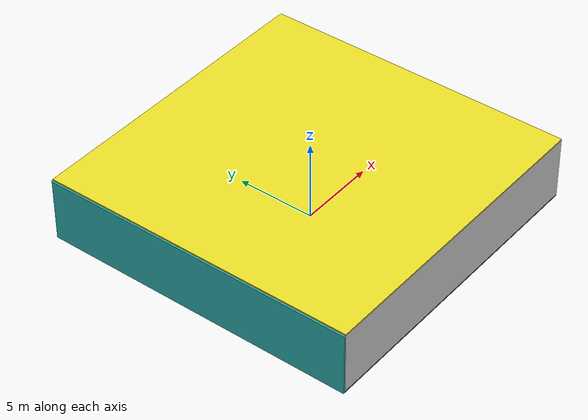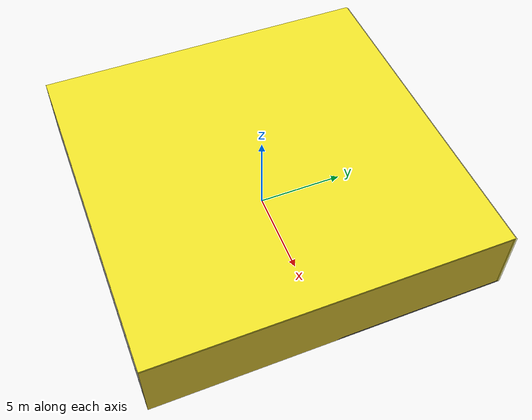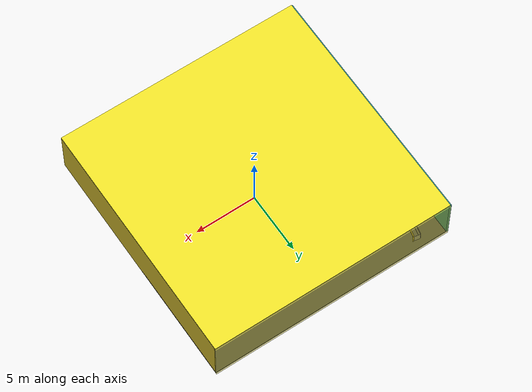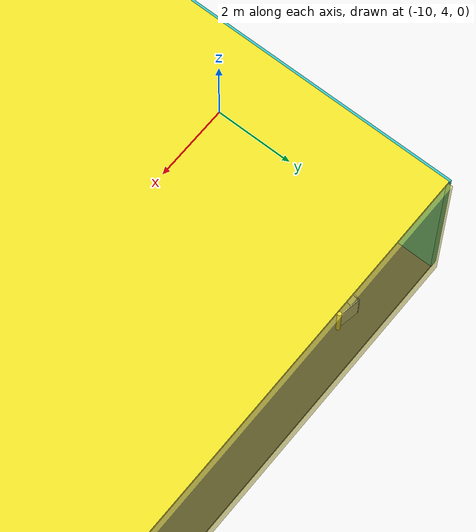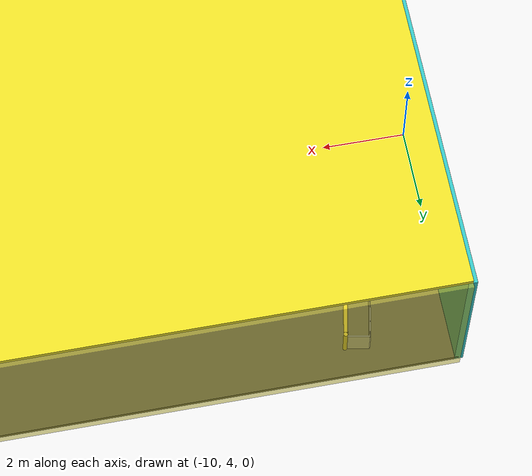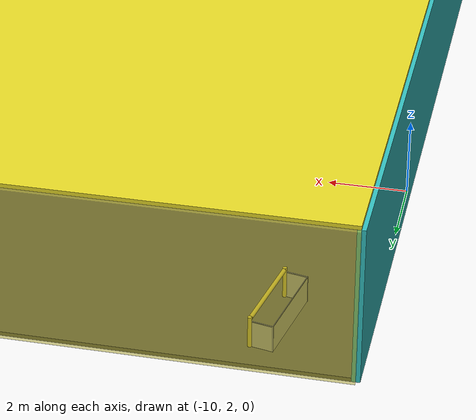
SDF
<sdf version="1.4">
 <world name="default">
  <physics type="ode">
   <max_step_size>0.001</max_step_size>
   <real_time_factor>1</real_time_factor>
   <real_time_update_rate>1000</real_time_update_rate>
   <gravity>0 0 -9.8</gravity>
  </physics>
  <scene><ambient>0.4 0.4 0.4 1</ambient><background>0.7 0.7 0.7 1</background><shadows>1</shadows></scene>
  <model name="Surrounding">
   <static>1</static>
   <link name="Ceiling">
    <collision name="Ceiling_Collision"><geometry><box><size>20 20 0.1</size></box></geometry></collision>
    <visual name="Ceiling_Visual">
     <geometry><box><size>20 20 0.1</size></box></geometry>
     <material>
      <script><uri>file://media/materials/scripts/gazebo.material</uri><name>Gazebo/Yellow</name></script>
     </material>
    </visual>
    <pose>0 0 4.05 0 0 0</pose>
   </link>
   <link name="Wall_South">
    <collision name="Wall_South_Collision">
     <geometry><box><size>20 0 4</size></box></geometry>
     <pose>0 0 2 0 -0 0</pose>
    </collision>
    <visual name="Wall_South_Visual">
     <pose>0 0 2 0 -0 0</pose>
     <geometry><box><size>20 0 4</size></box></geometry>
     <material>
      <script><uri>file://media/materials/scripts/gazebo.material</uri><name>Gazebo/White</name></script>
     </material>
    </visual>
    <velocity_decay><linear>0</linear><angular>0</angular></velocity_decay>
    <pose>0 -10 0 0 -0 0</pose>
   </link>
   <link name="Wall_East">
    <collision name="Wall_21_Collision">
     <geometry><box><size>20 0 4</size></box></geometry>
     <pose>0 0 2 0 -0 0</pose>
    </collision>
    <visual name="Wall_21_Visual">
     <pose>0 0 2 0 -0 0</pose>
     <geometry><box><size>20 0 4</size></box></geometry>
     <material>
      <script><uri>file://media/materials/scripts/gazebo.material</uri><name>Gazebo/ZincYellow</name></script>
     </material>
    </visual>
    <velocity_decay><linear>0</linear><angular>0</angular></velocity_decay>
    <pose>10 0 0 0 -0 1.5708</pose>
   </link>
   <link name="Wall_North">
    <collision name="Wall_22_Collision">
     <geometry><box><size>20 0.2 4</size></box></geometry>
     <pose>0 0 2 0 -0 0</pose>
    </collision>
    <visual name="Wall_22_Visual">
     <pose>0 0 2 0 -0 0</pose>
     <geometry><box><size>20 0.2 4</size></box></geometry>
     <material>
      <script>
       <uri>file://media/materials/scripts/gazebo.material</uri>
       <name>Gazebo/YellowTransparent</name>
      </script>
     </material>
    </visual>
    <velocity_decay><linear>0</linear><angular>0</angular></velocity_decay>
    <pose>0 10 0 0 -0 0</pose>
   </link>
   <link name="Wall_West">
    <collision name="Wall_23_Collision">
     <geometry><box><size>20 0.2 4</size></box></geometry>
     <pose>0 0 2 0 -0 0</pose>
    </collision>
    <visual name="Wall_23_Visual">
     <pose>0 0 2 0 -0 0</pose>
     <geometry><box><size>20 0.2 4</size></box></geometry>
     <material>
      <script><uri>file://media/materials/scripts/gazebo.material</uri><name>Gazebo/Turquoise</name></script>
     </material>
    </visual>
    <velocity_decay><linear>0</linear><angular>0</angular></velocity_decay>
    <pose>-10 0 0 0 0 -1.5708</pose>
   </link>
   <link name="Ground_link">
    <collision name="collision">
     <pose>0 0 .05 0 -0 0</pose>
     <geometry><box><size>20 20 0.1</size></box></geometry>
    </collision>
    <visual name="visual">
     <pose>0 0 .05 0 -0 0</pose>
     <geometry><box><size>20 20 0.1</size></box></geometry>
     <material>
      <script><uri>file://media/materials/scripts/gazebo.material</uri><name>Gazebo/Road</name></script>
     </material>
    </visual>
   </link>
   <static>1</static>
  </model>
  <spherical_coordinates>
   <surface_model>EARTH_WGS84</surface_model>
   <latitude_deg>0</latitude_deg>
   <longitude_deg>0</longitude_deg>
   <elevation>0</elevation>
   <heading_deg>0</heading_deg>
  </spherical_coordinates>
  <light name="lightball_0" type="diffuse">
   <diffuse>0.8 0.8 0.8 1</diffuse>
   <specular>0.2 0.2 0.2 1</specular>
   <attenuation>
    <range>100</range>
    <constant>0.7</constant>
    <linear>0.01</linear>
    <quadratic>0.001</quadratic>
   </attenuation>
   <direction>-0.5 0.1 -0.9</direction>
   <pose>-4.82391832497 -1.15518886785 2.62788620798 0 0 0</pose>
  </light>
  <light name="lightball_1" type="diffuse">
   <diffuse>0.8 0.8 0.8 1</diffuse>
   <specular>0.2 0.2 0.2 1</specular>
   <attenuation>
    <range>100</range>
    <constant>0.7</constant>
    <linear>0.01</linear>
    <quadratic>0.001</quadratic>
   </attenuation>
   <direction>-0.5 0.1 -0.9</direction>
   <pose>9.85858828757 -9.62287248295 0.822290545835 0 0 0</pose>
  </light>
  <light name="lightball_2" type="diffuse">
   <diffuse>0.8 0.8 0.8 1</diffuse>
   <specular>0.2 0.2 0.2 1</specular>
   <attenuation>
    <range>100</range>
    <constant>0.7</constant>
    <linear>0.01</linear>
    <quadratic>0.001</quadratic>
   </attenuation>
   <direction>-0.5 0.1 -0.9</direction>
   <pose>5.91215031809 -8.36465972539 1.32030727369 0 0 0</pose>
  </light>
  <light name="lightball_3" type="diffuse">
   <diffuse>0.8 0.8 0.8 1</diffuse>
   <specular>0.2 0.2 0.2 1</specular>
   <attenuation>
    <range>100</range>
    <constant>0.7</constant>
    <linear>0.01</linear>
    <quadratic>0.001</quadratic>
   </attenuation>
   <direction>-0.5 0.1 -0.9</direction>
   <pose>4.76511334358 -8.56718585435 2.92274469256 0 0 0</pose>
  </light>
  <light name="lightball_4" type="diffuse">
   <diffuse>0.8 0.8 0.8 1</diffuse>
   <specular>0.2 0.2 0.2 1</specular>
   <attenuation>
    <range>100</range>
    <constant>0.7</constant>
    <linear>0.01</linear>
    <quadratic>0.001</quadratic>
   </attenuation>
   <direction>-0.5 0.1 -0.9</direction>
   <pose>-7.87424773977 -3.74755863356 3.42326220133 0 0 0</pose>
  </light>
  <light name="lightball_5" type="diffuse">
   <diffuse>0.8 0.8 0.8 1</diffuse>
   <specular>0.2 0.2 0.2 1</specular>
   <attenuation>
    <range>100</range>
    <constant>0.7</constant>
    <linear>0.01</linear>
    <quadratic>0.001</quadratic>
   </attenuation>
   <direction>-0.5 0.1 -0.9</direction>
   <pose>-0.591084110291 2.58702413654 1.20119343845 0 0 0</pose>
  </light>
  <include>
   <uri>model://robocup_3Dsim_goal</uri>
   <pose>-7.67400611325 8.2956500936 0 0 0 2.95221366043</pose>
  </include>
  <include>
   <uri>model://textured_shapes</uri>
   <pose>5.12081966882 4.85044585932 0 0 0 2.16210243323</pose>
  </include>
  <include><uri>model://cabinet</uri><pose>6.76169565153 5.16085060916 0 0 0 2.6807316915</pose></include>
 </world>
</sdf>

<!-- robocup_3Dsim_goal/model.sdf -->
<sdf version="1.5">
  <model name="robocup_3d_goal">
    <static>true</static>
    <link name="left_post">
      <pose>0 1.05 0.45 0 0 0</pose>
      <collision name="collision">
        <geometry>
          <cylinder>
            <radius>0.05</radius>
            <length>0.9</length>
          </cylinder>
        </geometry>
      </collision>
      <visual name="visual">
        <geometry>
          <cylinder>
            <radius>0.05</radius>
            <length>0.9</length>
          </cylinder>
        </geometry>
        <material>
          <script>
            <uri>file://media/materials/scripts/gazebo.material</uri>
            <name>Gazebo/ZincYellow</name>
          </script>
        </material>
      </visual>
    </link>
    <link name="left_support_horiz_lower">
      <pose>0.30 1.05 0.01 0 0 0</pose>
      <collision name="collision">
        <geometry>
          <box>
            <size>0.50 0.02 0.02</size>
          </box>
        </geometry>
      </collision>
      <visual name="visual">
        <geometry>
          <box>
            <size>0.50 0.02 0.02</size>
          </box>
        </geometry>
        <material>
          <script>
            <uri>file://media/materials/scripts/gazebo.material</uri>
            <name>Gazebo/White</name>
          </script>
        </material>
      </visual>
    </link>
    <link name="left_support_horiz_upper">
      <pose>0.30 1.05 0.79 0 0 0</pose>
      <collision name="collision">
        <geometry>
          <box>
            <size>0.50 0.02 0.02</size>
          </box>
        </geometry>
      </collision>
      <visual name="visual">
        <geometry>
          <box>
            <size>0.50 0.02 0.02</size>
          </box>
        </geometry>
        <material>
          <script>
            <uri>file://media/materials/scripts/gazebo.material</uri>
            <name>Gazebo/White</name>
          </script>
        </material>
      </visual>
    </link>
    <link name="left_support_vertical">
      <pose>0.56 1.05 0.4 0 1.5708 0</pose>
      <collision name="collision">
        <geometry>
          <box>
            <size>0.80 0.02 0.02</size>
          </box>
        </geometry>
      </collision>
      <visual name="visual">
        <geometry>
          <box>
            <size>0.80 0.02 0.02</size>
          </box>
        </geometry>
        <material>
          <script>
            <uri>file://media/materials/scripts/gazebo.material</uri>
            <name>Gazebo/White</name>
          </script>
        </material>
      </visual>
    </link>
    <link name="right_support_horiz_lower">
      <pose>0.30 -1.05 0.01 0 0 0</pose>
      <collision name="collision">
        <geometry>
          <box>
            <size>0.50 0.02 0.02</size>
          </box>
        </geometry>
      </collision>
      <visual name="visual">
        <geometry>
          <box>
            <size>0.50 0.02 0.02</size>
          </box>
        </geometry>
        <material>
          <script>
            <uri>file://media/materials/scripts/gazebo.material</uri>
            <name>Gazebo/White</name>
          </script>
        </material>
      </visual>
    </link>
    <link name="right_support_horiz_upper">
      <pose>0.30 -1.05 0.79 0 0 0</pose>
      <collision name="collision">
        <geometry>
          <box>
            <size>0.50 0.02 0.02</size>
          </box>
        </geometry>
      </collision>
      <visual name="visual">
        <geometry>
          <box>
            <size>0.50 0.02 0.02</size>
          </box>
        </geometry>
        <material>
          <script>
            <uri>file://media/materials/scripts/gazebo.material</uri>
            <name>Gazebo/White</name>
          </script>
        </material>
      </visual>
    </link>
    <link name="right_support_vertical">
      <pose>0.56 -1.05 0.4 0 1.5708 0</pose>
      <collision name="collision">
        <geometry>
          <box>
            <size>0.80 0.02 0.02</size>
          </box>
        </geometry>
      </collision>
      <visual name="visual">
        <geometry>
          <box>
            <size>0.80 0.02 0.02</size>
          </box>
        </geometry>
        <material>
          <script>
            <uri>file://media/materials/scripts/gazebo.material</uri>
            <name>Gazebo/White</name>
          </script>
        </material>
      </visual>
    </link>
    <link name="center_support_horiz_lower">
      <pose>0.56 0 0.01 0 1.5708 0</pose>
      <collision name="collision">
        <geometry>
          <box>
            <size>0.02 2.08 0.02</size>
          </box>
        </geometry>
      </collision>
      <visual name="visual">
        <geometry>
          <box>
            <size>0.02 2.08 0.02</size>
          </box>
        </geometry>
        <material>
          <script>
            <uri>file://media/materials/scripts/gazebo.material</uri>
            <name>Gazebo/White</name>
          </script>
        </material>
      </visual>
    </link>
    <link name="center_support_horiz_upper">
      <pose>0.56 0 0.79 0 1.5708 0</pose>
      <collision name="collision">
        <geometry>
          <box>
            <size>0.02 2.08 0.02</size>
          </box>
        </geometry>
      </collision>
      <visual name="visual">
        <geometry>
          <box>
            <size>0.02 2.08 0.02</size>
          </box>
        </geometry>
        <material>
          <script>
            <uri>file://media/materials/scripts/gazebo.material</uri>
            <name>Gazebo/White</name>
          </script>
        </material>
      </visual>
    </link>
    <link name="right_post">
      <pose>0 -1.05 0.45 0 0 0</pose>
      <collision name="collision">
        <geometry>
          <cylinder>
            <radius>0.05</radius>
            <length>0.9</length>
          </cylinder>
        </geometry>
      </collision>
      <visual name="visual">
        <geometry>
          <cylinder>
            <radius>0.05</radius>
            <length>0.9</length>
          </cylinder>
        </geometry>
        <material>
          <script>
            <uri>file://media/materials/scripts/gazebo.material</uri>
            <name>Gazebo/ZincYellow</name>
          </script>
        </material>
      </visual>
    </link>
    <link name="crossbar">
      <pose>0 0 0.85 1.57 1.57 0</pose>
      <collision name="collision">
        <geometry>
          <cylinder>
            <radius>0.05</radius>
            <length>2.0</length>
          </cylinder>
        </geometry>
      </collision>
      <visual name="visual">
        <geometry>
          <cylinder>
            <radius>0.05</radius>
            <length>2.0</length>
          </cylinder>
        </geometry>
        <material>
          <script>
            <uri>file://media/materials/scripts/gazebo.material</uri>
            <name>Gazebo/ZincYellow</name>
          </script>
        </material>
      </visual>
    </link>
    <link name="center_net">
      <pose>0.56 0 0.40 0 0 0</pose>
      <collision name="collision">
        <geometry>
          <box>
            <size>0.01 2.1 0.80</size>
          </box>
        </geometry>
      </collision>
      <visual name="visual">
        <geometry>
          <box>
            <size>0.01 2.1 0.80</size>
          </box>
        </geometry>
        <material>
          <script>
            <uri>model://../model_source/models/robocup09_spl_field/materials/scripts/</uri>
            <uri>model://../model_source/models/robocup09_spl_field/materials/textures/</uri>
            <name>RoboCup/Net</name>
          </script>
        </material>
      </visual>
    </link>
    <link name="left_net">
      <pose>0.30 1.05 0.40 0 0 0</pose>
      <collision name="collision">
        <geometry>
          <box>
            <size>0.50 0.01 0.76</size>
          </box>
        </geometry>
      </collision>
      <visual name="visual">
        <geometry>
          <box>
            <size>0.50 0.01 0.76</size>
          </box>
        </geometry>
        <material>
          <script>
            <uri>model://../model_source/models/robocup09_spl_field/materials/scripts/</uri>
            <uri>model://../model_source/models/robocup09_spl_field/materials/textures/</uri>
            <name>RoboCup/Net</name>
          </script>
        </material>
      </visual>
    </link>
    <link name="right_net">
      <pose>0.30 -1.05 0.40 0 0 0</pose>
      <collision name="collision">
        <geometry>
          <box>
            <size>0.50 0.01 0.76</size>
          </box>
        </geometry>
      </collision>
      <visual name="visual">
        <geometry>
          <box>
            <size>0.50 0.01 0.76</size>
          </box>
        </geometry>
        <material>
          <script>
            <uri>model://../model_source/models/robocup09_spl_field/materials/scripts/</uri>
            <uri>model://../model_source/models/robocup09_spl_field/materials/textures/</uri>
            <name>RoboCup/Net</name>
          </script>
        </material>
      </visual>
    </link>
  </model>
</sdf>

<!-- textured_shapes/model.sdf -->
<sdf version="1.6">
  <model name="textured_shapes">
    <pose>0 0 0.5 0 0 0</pose>
    <link name="box">
      <pose>0 -1.5 0 0 0 0</pose>
      <collision name="collision">
        <geometry>
          <box>
            <size>1 1 1</size>
          </box>
        </geometry>
      </collision>
      <visual name="visual">
        <geometry>
          <box>
            <size>1 1 1</size>
          </box>
        </geometry>
        <material>
          <script>
            <uri>model://../model_source/models/textured_shapes/materials/scripts</uri>
            <uri>model://../model_source/models/textured_shapes/materials/textures</uri>
            <name>TexturedShape/Squares</name>
          </script>
        </material>
      </visual>
    </link>
    <link name="sphere">
      <collision name="collision">
        <geometry>
          <sphere>
            <radius>0.5</radius>
          </sphere>
        </geometry>
      </collision>
      <visual name="visual">
        <geometry>
          <sphere>
            <radius>0.5</radius>
          </sphere>
        </geometry>
        <material>
          <script>
            <uri>model://../model_source/models/textured_shapes/materials/scripts</uri>
            <uri>model://../model_source/models/textured_shapes/materials/textures</uri>
            <name>TexturedShape/Squares</name>
          </script>
        </material>
      </visual>
    </link>
    <link name="cylinder">
      <pose>0 1.5 0 0 0 0</pose>
      <collision name="collision">
        <geometry>
          <cylinder>
            <radius>0.5</radius>
            <length>1</length>
          </cylinder>
        </geometry>
      </collision>
      <visual name="visual">
        <geometry>
          <cylinder>
            <radius>0.5</radius>
            <length>1</length>
          </cylinder>
        </geometry>
        <material>
          <script>
            <uri>model://../model_source/models/textured_shapes/materials/scripts</uri>
            <uri>model://../model_source/models/textured_shapes/materials/textures</uri>
            <name>TexturedShape/Squares</name>
          </script>
        </material>
      </visual>
    </link>
  </model>
</sdf>

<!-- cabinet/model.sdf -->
<sdf version="1.5">
  <model name="cabinet">
    <static>true</static>
    <link name="cabinet_bottom_plate">
      <inertial>
        <pose>0 0 -1 0 0 0</pose>
        <inertia>
          <ixx>2.050000</ixx>
          <ixy>0</ixy>
          <ixz>0</ixz>
          <iyy>2.050000</iyy>
          <iyz>0</iyz>
          <izz>2.050000</izz>
        </inertia>
        <mass>25.000000</mass>
      </inertial>
      <collision name="cabinet_bottom_plate_geom">
        <pose>0 0 0.010000 0 0 0</pose>
        <geometry>
          <box>
            <size>0.450000 0.450000 0.020000</size>
          </box>
        </geometry>
      </collision>
      <visual name="cabinet_bottom_plate_geom_visual">
        <pose>0 0 0.010000 0 0 0</pose>
        <geometry>
          <box>
            <size>0.450000 0.450000 0.020000</size>
          </box>
        </geometry>
        <material>
          <script>
            <uri>model://media/materials/scripts/gazebo.material</uri>
            <name>Gazebo/Wood</name>
          </script>
        </material>
      </visual>
      <collision name="cabinet_bottom_plate_geom_cabinet_back_plate">
        <pose>0.235000 0 0.510000 0 0 0</pose>
        <geometry>
          <box>
            <size>0.020000 0.450000 1.020000</size>
          </box>
        </geometry>
      </collision>
      <visual name="cabinet_bottom_plate_geom_cabinet_back_plate_visual">
        <pose>0.235000 0 0.510000 0 0 0</pose>
        <geometry>
          <box>
            <size>0.020000 0.450000 1.020000</size>
          </box>
        </geometry>
        <material>
          <script>
            <uri>model://media/materials/scripts/gazebo.material</uri>
            <name>Gazebo/Wood</name>
          </script>
        </material>
      </visual>
      <collision name="cabinet_bottom_plate_geom_cabinet_left_plate">
        <pose>0 0.235000 0.510000 0 0 0</pose>
        <geometry>
          <box>
            <size>0.450000 0.020000 1.020000</size>
          </box>
        </geometry>
      </collision>
      <visual name="cabinet_bottom_plate_geom_cabinet_left_plate_visual">
        <pose>0 0.235000 0.510000 0 0 0</pose>
        <geometry>
          <box>
            <size>0.450000 0.020000 1.020000</size>
          </box>
        </geometry>
        <material>
          <script>
            <uri>model://media/materials/scripts/gazebo.material</uri>
            <name>Gazebo/Wood</name>
          </script>
        </material>
      </visual>
      <collision name="cabinet_bottom_plate_geom_cabinet_middle_plate">
        <pose>0 0 0.510000 0 0 0</pose>
        <geometry>
          <box>
            <size>0.450000 0.450000 0.020000</size>
          </box>
        </geometry>
      </collision>
      <visual name="cabinet_bottom_plate_geom_cabinet_middle_plate_visual">
        <pose>0 0 0.510000 0 0 0</pose>
        <geometry>
          <box>
            <size>0.450000 0.450000 0.020000</size>
          </box>
        </geometry>
        <material>
          <script>
            <uri>model://media/materials/scripts/gazebo.material</uri>
            <name>Gazebo/Wood</name>
          </script>
        </material>
      </visual>
      <collision name="cabinet_bottom_plate_geom_cabinet_right_plate">
        <pose>0 -0.235000 0.510000 0 0 0</pose>
        <geometry>
          <box>
            <size>0.450000 0.020000 1.020000</size>
          </box>
        </geometry>
      </collision>
      <visual name="cabinet_bottom_plate_geom_cabinet_right_plate_visual">
        <pose>0 -0.235000 0.510000 0 0 0</pose>
        <geometry>
          <box>
            <size>0.450000 0.020000 1.020000</size>
          </box>
        </geometry>
        <material>
          <script>
            <uri>model://media/materials/scripts/gazebo.material</uri>
            <name>Gazebo/Wood</name>
          </script>
        </material>
      </visual>
      <collision name="cabinet_bottom_plate_geom_cabinet_top_plate">
        <pose>0 0 1.010000 0 0 0</pose>
        <geometry>
          <box>
            <size>0.450000 0.450000 0.020000</size>
          </box>
        </geometry>
      </collision>
      <visual name="cabinet_bottom_plate_geom_cabinet_top_plate_visual">
        <pose>0 0 1.010000 0 0 0</pose>
        <geometry>
          <box>
            <size>0.450000 0.450000 0.020000</size>
          </box>
        </geometry>
        <material>
          <script>
            <uri>model://media/materials/scripts/gazebo.material</uri>
            <name>Gazebo/Wood</name>
          </script>
        </material>
      </visual>
    </link>
  </model>
</sdf>
